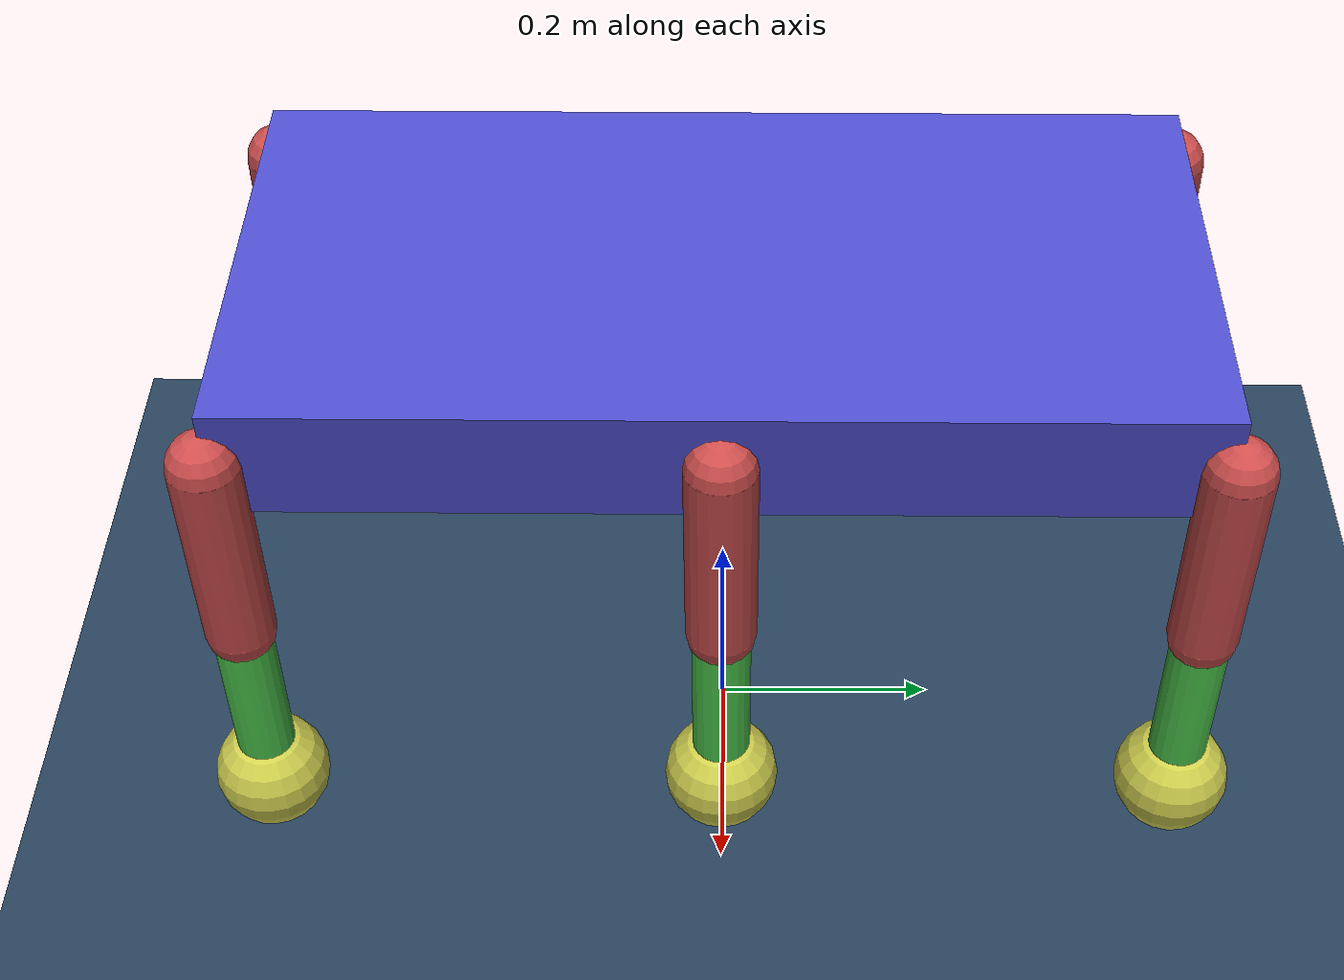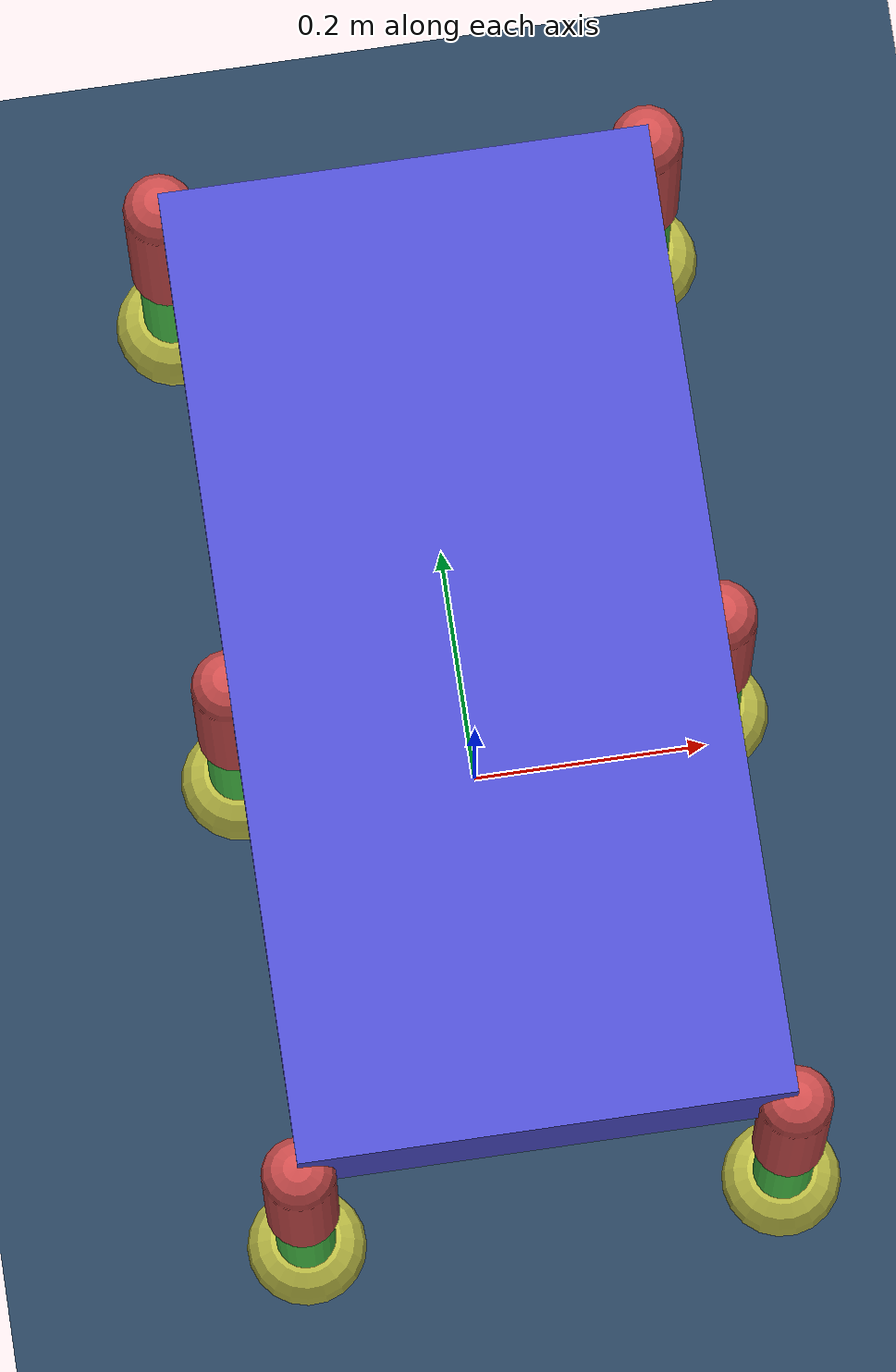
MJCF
<mujoco model="hexagonal_robot">
  <compiler angle="radian" meshdir="assets" texturedir="assets"/>

  <option timestep="0.0005" integrator="RK4"/>

  <!-- Disable self-collisions -->
  <contact>
    <exclude body1="base" body2="northeast_base"/>
    <exclude body1="base" body2="east_base"/>
    <exclude body1="base" body2="southeast_base"/>
    <exclude body1="base" body2="southwest_base"/>
    <exclude body1="base" body2="west_base"/>
    <exclude body1="base" body2="northwest_base"/>
  </contact>

  <asset>
    <texture name="texplane" type="2d" builtin="checker" rgb1=".2 .3 .4" rgb2=".1 .2 .3" width="512" height="512"/>
    <material name="matplane" reflectance="0.3" texture="texplane" texrepeat="1 1" texuniform="true"/>
  </asset>

  <worldbody>
    <!-- Ground plane with high friction -->
    <geom name="ground" type="plane" size="5 5 0.1" material="matplane" friction="2 0.005 0.0001"/>

    <!-- Hexagonal base body -->
    <body name="base" pos="0 0 0.5">
      <!-- Free joint allows 6 DOF motion in world -->
      <freejoint/>
      <!-- Hexagonal base -->
      <geom name="base_geom" type="box" size="0.2 0.4 0.05" rgba="0.3 0.3 0.8 1" mass="8.0" contype="1" conaffinity="1"/>

      <!-- Northeast leg (corner) -->
      <body name="northeast_base" pos="0.2 0.4 0" euler="0 0 0.524">
        <joint name="northeast_yaw" type="hinge" axis="0 0 1" range="-1.57 1.57" damping="1.0"/>
        <joint name="northeast_hip_pitch" type="hinge" axis="0 1 0" range="-2.36 0.785" damping="1.0"/>
        <geom name="northeast_upper" type="capsule" size="0.03" fromto="0 0 0 0 0 -0.1875" rgba="0.8 0.3 0.3 1" mass="0.5" contype="0" conaffinity="0"/>

        <body name="northeast_lower" pos="0 0 -0.1875">
          <joint name="northeast_knee_pitch" type="hinge" axis="0 1 0" range="0.0 1.57" damping="1.0"/>
          <geom name="northeast_lower_geom" type="capsule" size="0.025" fromto="0 0 0 0 0 -0.1875" rgba="0.3 0.8 0.3 1" mass="0.4" contype="0" conaffinity="0"/>

          <body name="northeast_foot" pos="0 0 -0.1875">
            <geom name="northeast_foot_geom" type="sphere" size="0.05" rgba="0.8 0.8 0.3 1" mass="0.1" contype="1" conaffinity="1" friction="2 0.005 0.0001"/>
          </body>
        </body>
      </body>

      <!-- East leg (middle) -->
      <body name="east_base" pos="0.2 0.0 0" euler="0 0 1.571">
        <joint name="east_hip_pitch" type="hinge" axis="1 0 0" range="-2.36 0.785" damping="1.0"/>
        <joint name="east_yaw" type="hinge" axis="0 1 0" range="-1.0 1.0" damping="1.0"/>
        <geom name="east_upper" type="capsule" size="0.03" fromto="0 0 0 0 0 -0.1875" rgba="0.8 0.3 0.3 1" mass="0.5" contype="0" conaffinity="0"/>

        <body name="east_lower" pos="0 0 -0.1875">
          <joint name="east_knee_pitch" type="hinge" axis="1 0 0" range="0.0 1.57" damping="1.0"/>
          <geom name="east_lower_geom" type="capsule" size="0.025" fromto="0 0 0 0 0 -0.1875" rgba="0.3 0.8 0.3 1" mass="0.4" contype="0" conaffinity="0"/>

          <body name="east_foot" pos="0 0 -0.1875">
            <geom name="east_foot_geom" type="sphere" size="0.05" rgba="0.8 0.8 0.3 1" mass="0.1" contype="1" conaffinity="1" friction="2 0.005 0.0001"/>
          </body>
        </body>
      </body>

      <!-- Southeast leg (corner) -->
      <body name="southeast_base" pos="0.2 -0.4 0" euler="0 0 2.618">
        <joint name="southeast_yaw" type="hinge" axis="0 0 1" range="-1.57 1.57" damping="1.0"/>
        <joint name="southeast_hip_pitch" type="hinge" axis="0 1 0" range="-0.785 2.36" damping="1.0"/>
        <geom name="southeast_upper" type="capsule" size="0.03" fromto="0 0 0 0 0 -0.1875" rgba="0.8 0.3 0.3 1" mass="0.5" contype="0" conaffinity="0"/>

        <body name="southeast_lower" pos="0 0 -0.1875">
          <joint name="southeast_knee_pitch" type="hinge" axis="0 1 0" range="-1.57 0.0" damping="1.0"/>
          <geom name="southeast_lower_geom" type="capsule" size="0.025" fromto="0 0 0 0 0 -0.1875" rgba="0.3 0.8 0.3 1" mass="0.4" contype="0" conaffinity="0"/>

          <body name="southeast_foot" pos="0 0 -0.1875">
            <geom name="southeast_foot_geom" type="sphere" size="0.05" rgba="0.8 0.8 0.3 1" mass="0.1" contype="1" conaffinity="1" friction="2 0.005 0.0001"/>
          </body>
        </body>
      </body>

      <!-- Southwest leg (corner) -->
      <body name="southwest_base" pos="-0.2 -0.4 0" euler="0 0 3.665">
        <joint name="southwest_yaw" type="hinge" axis="0 0 1" range="-1.57 1.57" damping="1.0"/>
        <joint name="southwest_hip_pitch" type="hinge" axis="0 1 0" range="-2.36 0.785" damping="1.0"/>
        <geom name="southwest_upper" type="capsule" size="0.03" fromto="0 0 0 0 0 -0.1875" rgba="0.8 0.3 0.3 1" mass="0.5" contype="0" conaffinity="0"/>

        <body name="southwest_lower" pos="0 0 -0.1875">
          <joint name="southwest_knee_pitch" type="hinge" axis="0 1 0" range="0.0 1.57" damping="1.0"/>
          <geom name="southwest_lower_geom" type="capsule" size="0.025" fromto="0 0 0 0 0 -0.1875" rgba="0.3 0.8 0.3 1" mass="0.4" contype="0" conaffinity="0"/>

          <body name="southwest_foot" pos="0 0 -0.1875">
            <geom name="southwest_foot_geom" type="sphere" size="0.05" rgba="0.8 0.8 0.3 1" mass="0.1" contype="1" conaffinity="1" friction="2 0.005 0.0001"/>
          </body>
        </body>
      </body>

      <!-- West leg (middle) -->
      <body name="west_base" pos="-0.2 0 0" euler="0 0 4.712">
        <joint name="west_hip_pitch" type="hinge" axis="1 0 0" range="-2.36 0.785" damping="1.0"/>
        <joint name="west_yaw" type="hinge" axis="0 1 0" range="-1.0 1.0" damping="1.0"/>
        <geom name="west_upper" type="capsule" size="0.03" fromto="0 0 0 0 0 -0.1875" rgba="0.8 0.3 0.3 1" mass="0.5" contype="0" conaffinity="0"/>

        <body name="west_lower" pos="0 0 -0.1875">
          <joint name="west_knee_pitch" type="hinge" axis="1 0 0" range="0.0 1.57" damping="1.0"/>
          <geom name="west_lower_geom" type="capsule" size="0.025" fromto="0 0 0 0 0 -0.1875" rgba="0.3 0.8 0.3 1" mass="0.4" contype="0" conaffinity="0"/>

          <body name="west_foot" pos="0 0 -0.1875">
            <geom name="west_foot_geom" type="sphere" size="0.05" rgba="0.8 0.8 0.3 1" mass="0.1" contype="1" conaffinity="1" friction="2 0.005 0.0001"/>
          </body>
        </body>
      </body>

      <!-- Northwest leg (corner) -->
      <body name="northwest_base" pos="-0.2 0.4 0" euler="0 0 5.759">
        <joint name="northwest_yaw" type="hinge" axis="0 0 1" range="-1.57 1.57" damping="1.0"/>
        <joint name="northwest_hip_pitch" type="hinge" axis="0 1 0" range="-0.785 2.36" damping="1.0"/>
        <geom name="northwest_upper" type="capsule" size="0.03" fromto="0 0 0 0 0 -0.1875" rgba="0.8 0.3 0.3 1" mass="0.5" contype="0" conaffinity="0"/>

        <body name="northwest_lower" pos="0 0 -0.1875">
          <joint name="northwest_knee_pitch" type="hinge" axis="0 1 0" range="-1.57 0.0" damping="1.0"/>
          <geom name="northwest_lower_geom" type="capsule" size="0.025" fromto="0 0 0 0 0 -0.1875" rgba="0.3 0.8 0.3 1" mass="0.4" contype="0" conaffinity="0"/>

          <body name="northwest_foot" pos="0 0 -0.1875">
            <geom name="northwest_foot_geom" type="sphere" size="0.05" rgba="0.8 0.8 0.3 1" mass="0.1" contype="1" conaffinity="1" friction="2 0.005 0.0001"/>
          </body>
        </body>
      </body>
    </body>
  </worldbody>

  <actuator>
    <!-- Northeast leg actuators -->
    <position name="northeast_yaw_motor" joint="northeast_yaw" ctrlrange="-1.57 1.57" kp="15" kv="0"/>
    <position name="northeast_hip_pitch_motor" joint="northeast_hip_pitch" ctrlrange="-2.36 0.785" kp="15" kv="0"/>
    <position name="northeast_knee_pitch_motor" joint="northeast_knee_pitch" ctrlrange="-1.57 1.57" kp="15" kv="0"/>

    <!-- East leg actuators -->
    <position name="east_yaw_motor" joint="east_yaw" ctrlrange="-1.0 1.0" kp="15" kv="0"/>
    <position name="east_hip_pitch_motor" joint="east_hip_pitch" ctrlrange="-2.36 0.785" kp="15" kv="0"/>
    <position name="east_knee_pitch_motor" joint="east_knee_pitch" ctrlrange="-1.57 1.57" kp="15" kv="0"/>

    <!-- Southeast leg actuators -->
    <position name="southeast_yaw_motor" joint="southeast_yaw" ctrlrange="-1.57 1.57" kp="15" kv="0"/>
    <position name="southeast_hip_pitch_motor" joint="southeast_hip_pitch" ctrlrange="-0.785 2.36" kp="15" kv="0"/>
    <position name="southeast_knee_pitch_motor" joint="southeast_knee_pitch" ctrlrange="-1.57 1.57" kp="15" kv="0"/>

    <!-- Southwest leg actuators -->
    <position name="southwest_yaw_motor" joint="southwest_yaw" ctrlrange="-1.57 1.57" kp="15" kv="0"/>
    <position name="southwest_hip_pitch_motor" joint="southwest_hip_pitch" ctrlrange="-2.36 0.785" kp="15" kv="0"/>
    <position name="southwest_knee_pitch_motor" joint="southwest_knee_pitch" ctrlrange="-1.57 1.57" kp="15" kv="0"/>

    <!-- West leg actuators -->
    <position name="west_yaw_motor" joint="west_yaw" ctrlrange="-1.0 1.0" kp="15" kv="0"/>
    <position name="west_hip_pitch_motor" joint="west_hip_pitch" ctrlrange="-2.36 0.785" kp="15" kv="0"/>
    <position name="west_knee_pitch_motor" joint="west_knee_pitch" ctrlrange="-1.57 1.57" kp="15" kv="0"/>

    <!-- Northwest leg actuators -->
    <position name="northwest_yaw_motor" joint="northwest_yaw" ctrlrange="-1.57 1.57" kp="15" kv="0"/>
    <position name="northwest_hip_pitch_motor" joint="northwest_hip_pitch" ctrlrange="-0.785 2.36" kp="15" kv="0"/>
    <position name="northwest_knee_pitch_motor" joint="northwest_knee_pitch" ctrlrange="-1.57 1.57" kp="15" kv="0"/>
  </actuator>
</mujoco>
